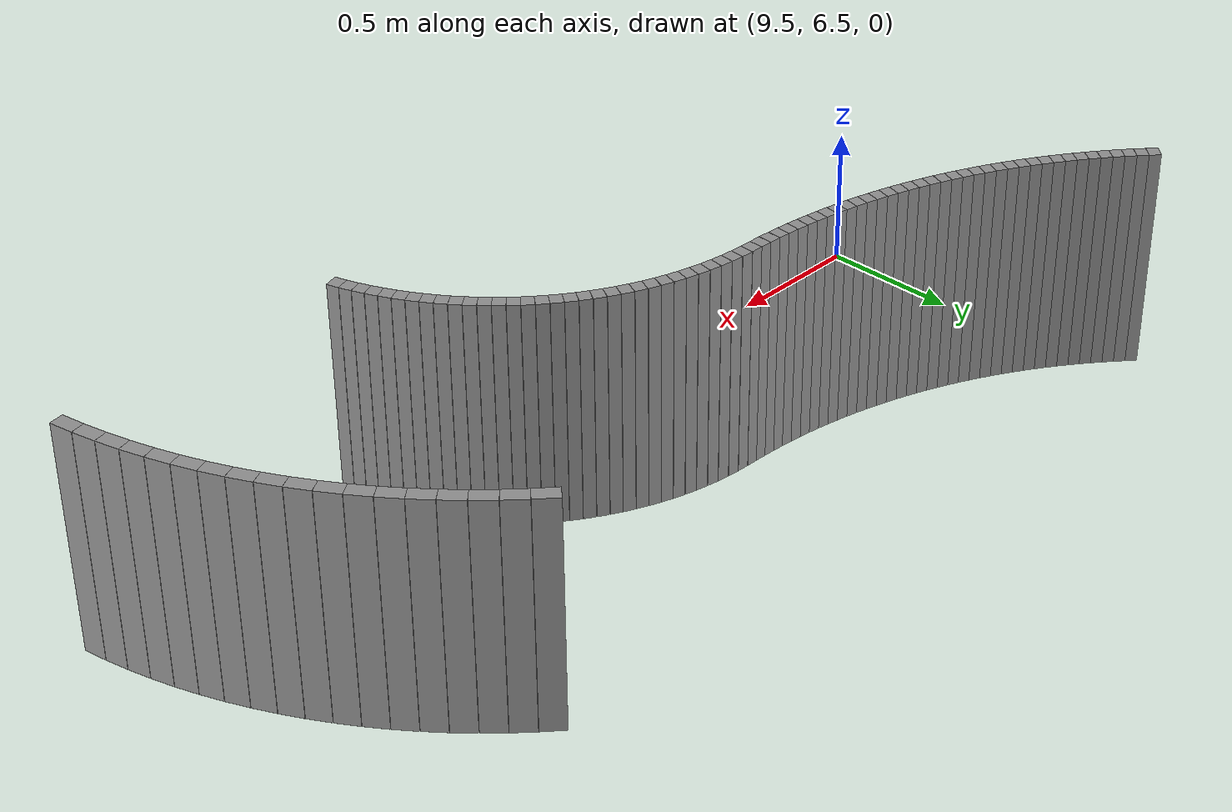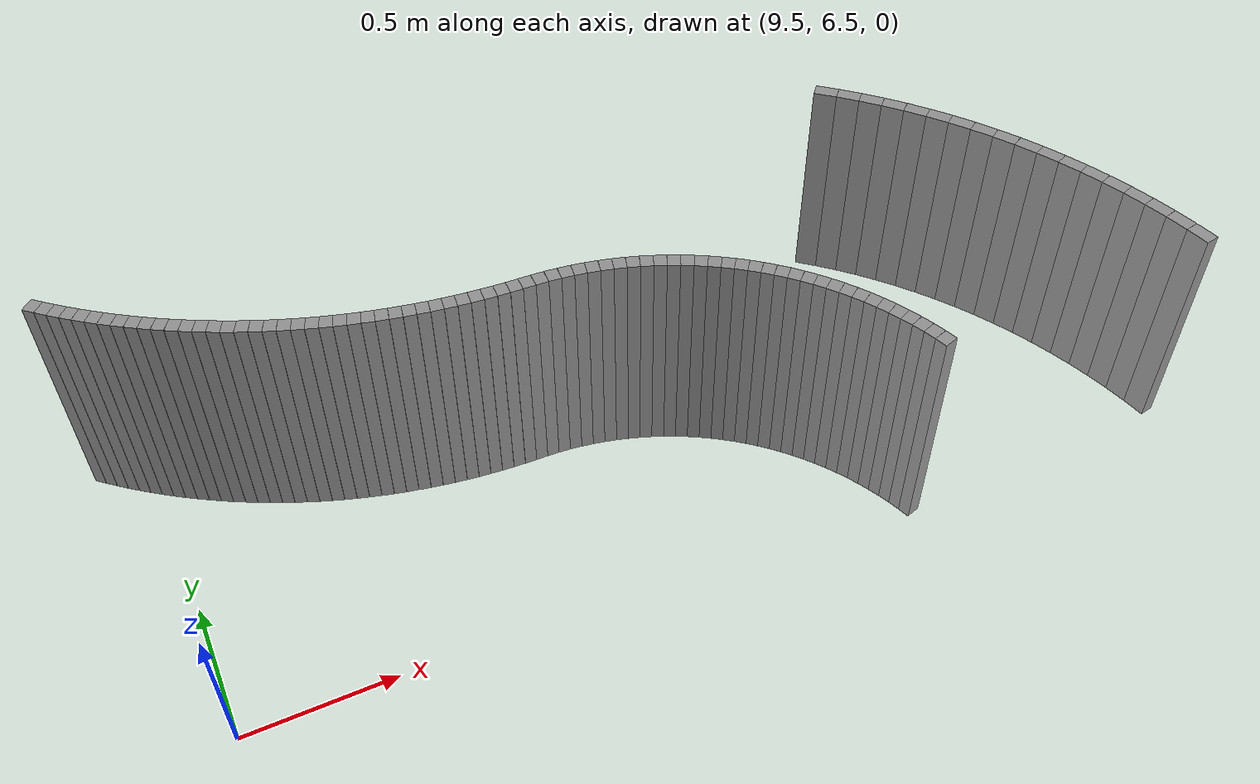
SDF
<sdf version="1.6">
 <model name="path_walls">
  <static>true</static>
  <model name="wall_left_105">
   <static>true</static>
   <pose>11.752347560102859 6.390835836285927 0.40 0 0 1.8690487939078826</pose>
   <link name="wall_link">
    <visual name="wall_visual">
     <geometry><box><size>0.0427374181205523 0.05 0.8</size></box></geometry>
     <material><ambient>0.3 0.3 0.3 1</ambient><diffuse>0.6 0.6 0.6 1</diffuse></material>
    </visual>
    <collision name="wall_collision">
     <geometry><box><size>0.0427374181205523 0.05 0.8</size></box></geometry>
    </collision>
   </link>
  </model>
  <model name="wall_left_106">
   <static>true</static>
   <pose>11.738982083201087 6.431420672394913 0.40 0 0 1.9088157895228475</pose>
   <link name="wall_link">
    <visual name="wall_visual">
     <geometry><box><size>0.042737418120572974 0.05 0.8</size></box></geometry>
     <material><ambient>0.3 0.3 0.3 1</ambient><diffuse>0.6 0.6 0.6 1</diffuse></material>
    </visual>
    <collision name="wall_collision">
     <geometry><box><size>0.042737418120572974 0.05 0.8</size></box></geometry>
    </collision>
   </link>
  </model>
  <model name="wall_left_107">
   <static>true</static>
   <pose>11.724013661432942 6.471442057235722 0.40 0 0 1.948582785138032</pose>
   <link name="wall_link">
    <visual name="wall_visual">
     <geometry><box><size>0.042737418120557064 0.05 0.8</size></box></geometry>
     <material><ambient>0.3 0.3 0.3 1</ambient><diffuse>0.6 0.6 0.6 1</diffuse></material>
    </visual>
    <collision name="wall_collision">
     <geometry><box><size>0.042737418120557064 0.05 0.8</size></box></geometry>
    </collision>
   </link>
  </model>
  <model name="wall_left_108">
   <static>true</static>
   <pose>11.707465962949925 6.510836708772693 0.40 0 0 1.9883497807530512</pose>
   <link name="wall_link">
    <visual name="wall_visual">
     <geometry><box><size>0.04273741812054753 0.05 0.8</size></box></geometry>
     <material><ambient>0.3 0.3 0.3 1</ambient><diffuse>0.6 0.6 0.6 1</diffuse></material>
    </visual>
    <collision name="wall_collision">
     <geometry><box><size>0.04273741812054753 0.05 0.8</size></box></geometry>
    </collision>
   </link>
  </model>
  <model name="wall_left_109">
   <static>true</static>
   <pose>11.689365153064646 6.549542335964376 0.40 0 0 2.0281167763680585</pose>
   <link name="wall_link">
    <visual name="wall_visual">
     <geometry><box><size>0.04273741812056574 0.05 0.8</size></box></geometry>
     <material><ambient>0.3 0.3 0.3 1</ambient><diffuse>0.6 0.6 0.6 1</diffuse></material>
    </visual>
    <collision name="wall_collision">
     <geometry><box><size>0.04273741812056574 0.05 0.8</size></box></geometry>
    </collision>
   </link>
  </model>
  <model name="wall_left_110">
   <static>true</static>
   <pose>11.669739852878067 6.587497737258413 0.40 0 0 2.067883771983156</pose>
   <link name="wall_link">
    <visual name="wall_visual">
     <geometry><box><size>0.04273741812055137 0.05 0.8</size></box></geometry>
     <material><ambient>0.3 0.3 0.3 1</ambient><diffuse>0.6 0.6 0.6 1</diffuse></material>
    </visual>
    <collision name="wall_collision">
     <geometry><box><size>0.04273741812055137 0.05 0.8</size></box></geometry>
    </collision>
   </link>
  </model>
  <model name="wall_left_111">
   <static>true</static>
   <pose>11.648621094023675 6.624642897363794 0.40 0 0 2.107650767598218</pose>
   <link name="wall_link">
    <visual name="wall_visual">
     <geometry><box><size>0.04273741812055587 0.05 0.8</size></box></geometry>
     <material><ambient>0.3 0.3 0.3 1</ambient><diffuse>0.6 0.6 0.6 1</diffuse></material>
    </visual>
    <collision name="wall_collision">
     <geometry><box><size>0.04273741812055587 0.05 0.8</size></box></geometry>
    </collision>
   </link>
  </model>
  <model name="wall_left_112">
   <static>true</static>
   <pose>11.626042269600081 6.660919082147384 0.40 0 0 2.1474177632132623</pose>
   <link name="wall_link">
    <visual name="wall_visual">
     <geometry><box><size>0.042737418120560464 0.05 0.8</size></box></geometry>
     <material><ambient>0.3 0.3 0.3 1</ambient><diffuse>0.6 0.6 0.6 1</diffuse></material>
    </visual>
    <collision name="wall_collision">
     <geometry><box><size>0.042737418120560464 0.05 0.8</size></box></geometry>
    </collision>
   </link>
  </model>
  <model name="wall_left_113">
   <static>true</static>
   <pose>11.602039081369679 6.696268931504626 0.40 0 0 2.187184758828309</pose>
   <link name="wall_link">
    <visual name="wall_visual">
     <geometry><box><size>0.042737418120536455 0.05 0.8</size></box></geometry>
     <material><ambient>0.3 0.3 0.3 1</ambient><diffuse>0.6 0.6 0.6 1</diffuse></material>
    </visual>
    <collision name="wall_collision">
     <geometry><box><size>0.042737418120536455 0.05 0.8</size></box></geometry>
    </collision>
   </link>
  </model>
  <model name="wall_left_114">
   <static>true</static>
   <pose>11.576649483306792 6.730636550057705 0.40 0 0 2.2269517544434194</pose>
   <link name="wall_link">
    <visual name="wall_visual">
     <geometry><box><size>0.04273741812058575 0.05 0.8</size></box></geometry>
     <material><ambient>0.3 0.3 0.3 1</ambient><diffuse>0.6 0.6 0.6 1</diffuse></material>
    </visual>
    <collision name="wall_collision">
     <geometry><box><size>0.04273741812058575 0.05 0.8</size></box></geometry>
    </collision>
   </link>
  </model>
  <model name="wall_left_115">
   <static>true</static>
   <pose>11.549913621584679 6.763967595537574 0.40 0 0 2.2667187500584602</pose>
   <link name="wall_link">
    <visual name="wall_visual">
     <geometry><box><size>0.042737418120538204 0.05 0.8</size></box></geometry>
     <material><ambient>0.3 0.3 0.3 1</ambient><diffuse>0.6 0.6 0.6 1</diffuse></material>
    </visual>
    <collision name="wall_collision">
     <geometry><box><size>0.042737418120538204 0.05 0.8</size></box></geometry>
    </collision>
   </link>
  </model>
  <model name="wall_left_116">
   <static>true</static>
   <pose>11.521873771096168 6.796209364710274 0.40 0 0 2.306485745673511</pose>
   <link name="wall_link">
    <visual name="wall_visual">
     <geometry><box><size>0.042737418120554795 0.05 0.8</size></box></geometry>
     <material><ambient>0.3 0.3 0.3 1</ambient><diffuse>0.6 0.6 0.6 1</diffuse></material>
    </visual>
    <collision name="wall_collision">
     <geometry><box><size>0.042737418120554795 0.05 0.8</size></box></geometry>
    </collision>
   </link>
  </model>
  <model name="wall_left_117">
   <static>true</static>
   <pose>11.492574268608323 6.827310876711616 0.40 0 0 2.3462527412886005</pose>
   <link name="wall_link">
    <visual name="wall_visual">
     <geometry><box><size>0.04273741812056665 0.05 0.8</size></box></geometry>
     <material><ambient>0.3 0.3 0.3 1</ambient><diffuse>0.6 0.6 0.6 1</diffuse></material>
    </visual>
    <collision name="wall_collision">
     <geometry><box><size>0.04273741812056665 0.05 0.8</size></box></geometry>
    </collision>
   </link>
  </model>
  <model name="wall_left_118">
   <static>true</static>
   <pose>11.462061442656967 6.85722295365834 0.40 0 0 2.3860197369036436</pose>
   <link name="wall_link">
    <visual name="wall_visual">
     <geometry><box><size>0.04273741812054185 0.05 0.8</size></box></geometry>
     <material><ambient>0.3 0.3 0.3 1</ambient><diffuse>0.6 0.6 0.6 1</diffuse></material>
    </visual>
    <collision name="wall_collision">
     <geometry><box><size>0.04273741812054185 0.05 0.8</size></box></geometry>
    </collision>
   </link>
  </model>
  <model name="wall_left_119">
   <static>true</static>
   <pose>11.4303835402917 6.885898298408511 0.40 0 0 2.4257867325186773</pose>
   <link name="wall_link">
    <visual name="wall_visual">
     <geometry><box><size>0.042737418120574466 0.05 0.8</size></box></geometry>
     <material><ambient>0.3 0.3 0.3 1</ambient><diffuse>0.6 0.6 0.6 1</diffuse></material>
    </visual>
    <collision name="wall_collision">
     <geometry><box><size>0.042737418120574466 0.05 0.8</size></box></geometry>
    </collision>
   </link>
  </model>
  <model name="wall_left_120">
   <static>true</static>
   <pose>11.397590650787407 6.91329156934799 0.40 0 0 2.465553728133758</pose>
   <link name="wall_link">
    <visual name="wall_visual">
     <geometry><box><size>0.04273741812053488 0.05 0.8</size></box></geometry>
     <material><ambient>0.3 0.3 0.3 1</ambient><diffuse>0.6 0.6 0.6 1</diffuse></material>
    </visual>
    <collision name="wall_collision">
     <geometry><box><size>0.04273741812053488 0.05 0.8</size></box></geometry>
    </collision>
   </link>
  </model>
  <model name="wall_left_121">
   <static>true</static>
   <pose>11.363734626442824 6.939359452084859 0.40 0 0 2.5053207237488357</pose>
   <link name="wall_link">
    <visual name="wall_visual">
     <geometry><box><size>0.042737418120570594 0.05 0.8</size></box></geometry>
     <material><ambient>0.3 0.3 0.3 1</ambient><diffuse>0.6 0.6 0.6 1</diffuse></material>
    </visual>
    <collision name="wall_collision">
     <geometry><box><size>0.042737418120570594 0.05 0.8</size></box></geometry>
    </collision>
   </link>
  </model>
  <model name="wall_left_122">
   <static>true</static>
   <pose>11.328869000591379 6.964060727938385 0.40 0 0 2.545087719363898</pose>
   <link name="wall_link">
    <visual name="wall_visual">
     <geometry><box><size>0.04273741812055266 0.05 0.8</size></box></geometry>
     <material><ambient>0.3 0.3 0.3 1</ambient><diffuse>0.6 0.6 0.6 1</diffuse></material>
    </visual>
    <collision name="wall_collision">
     <geometry><box><size>0.04273741812055266 0.05 0.8</size></box></geometry>
    </collision>
   </link>
  </model>
  <model name="wall_left_123">
   <static>true</static>
   <pose>11.293048902954023 6.9873563391142035 0.40 0 0 2.584854714978948</pose>
   <link name="wall_link">
    <visual name="wall_visual">
     <geometry><box><size>0.04273741812055879 0.05 0.8</size></box></geometry>
     <material><ambient>0.3 0.3 0.3 1</ambient><diffuse>0.6 0.6 0.6 1</diffuse></material>
    </visual>
    <collision name="wall_collision">
     <geometry><box><size>0.04273741812055879 0.05 0.8</size></box></geometry>
    </collision>
   </link>
  </model>
  <model name="wall_left_124">
   <static>true</static>
   <pose>11.25633097246778 7.009209450462739 0.40 0 0 2.62462171059399</pose>
   <link name="wall_link">
    <visual name="wall_visual">
     <geometry><box><size>0.04273741812054539 0.05 0.8</size></box></geometry>
     <material><ambient>0.3 0.3 0.3 1</ambient><diffuse>0.6 0.6 0.6 1</diffuse></material>
    </visual>
    <collision name="wall_collision">
     <geometry><box><size>0.04273741812054539 0.05 0.8</size></box></geometry>
    </collision>
   </link>
  </model>
  <model name="wall_left_125">
   <static>true</static>
   <pose>11.218773267727938 7.02958550772315 0.40 0 0 2.6643887062090683</pose>
   <link name="wall_link">
    <visual name="wall_visual">
     <geometry><box><size>0.04273741812056881 0.05 0.8</size></box></geometry>
     <material><ambient>0.3 0.3 0.3 1</ambient><diffuse>0.6 0.6 0.6 1</diffuse></material>
    </visual>
    <collision name="wall_collision">
     <geometry><box><size>0.04273741812056881 0.05 0.8</size></box></geometry>
    </collision>
   </link>
  </model>
  <model name="wall_left_126">
   <static>true</static>
   <pose>11.18043517518551 7.0484522921606985 0.40 0 0 2.7041557018241016</pose>
   <link name="wall_link">
    <visual name="wall_visual">
     <geometry><box><size>0.04273741812054899 0.05 0.8</size></box></geometry>
     <material><ambient>0.3 0.3 0.3 1</ambient><diffuse>0.6 0.6 0.6 1</diffuse></material>
    </visual>
    <collision name="wall_collision">
     <geometry><box><size>0.04273741812054899 0.05 0.8</size></box></geometry>
    </collision>
   </link>
  </model>
  <model name="wall_left_127">
   <static>true</static>
   <pose>11.141377315245025 7.0657799715112075 0.40 0 0 2.7439226974392095</pose>
   <link name="wall_link">
    <visual name="wall_visual">
     <geometry><box><size>0.042737418120564856 0.05 0.8</size></box></geometry>
     <material><ambient>0.3 0.3 0.3 1</ambient><diffuse>0.6 0.6 0.6 1</diffuse></material>
    </visual>
    <collision name="wall_collision">
     <geometry><box><size>0.042737418120564856 0.05 0.8</size></box></geometry>
    </collision>
   </link>
  </model>
  <model name="wall_left_128">
   <static>true</static>
   <pose>11.101661446411207 7.081541147152002 0.40 0 0 2.7836896930542343</pose>
   <link name="wall_link">
    <visual name="wall_visual">
     <geometry><box><size>0.04273741812055792 0.05 0.8</size></box></geometry>
     <material><ambient>0.3 0.3 0.3 1</ambient><diffuse>0.6 0.6 0.6 1</diffuse></material>
    </visual>
    <collision name="wall_collision">
     <geometry><box><size>0.04273741812055792 0.05 0.8</size></box></geometry>
    </collision>
   </link>
  </model>
  <model name="wall_left_129">
   <static>true</static>
   <pose>11.061350367636113 7.095710897424752 0.40 0 0 2.823456688669292</pose>
   <link name="wall_link">
    <visual name="wall_visual">
     <geometry><box><size>0.04273741812054215 0.05 0.8</size></box></geometry>
     <material><ambient>0.3 0.3 0.3 1</ambient><diffuse>0.6 0.6 0.6 1</diffuse></material>
    </visual>
    <collision name="wall_collision">
     <geometry><box><size>0.04273741812054215 0.05 0.8</size></box></geometry>
    </collision>
   </link>
  </model>
  <model name="wall_left_130">
   <static>true</static>
   <pose>11.020507819021027 7.10826681704175 0.40 0 0 2.863223684284406</pose>
   <link name="wall_link">
    <visual name="wall_visual">
     <geometry><box><size>0.042737418120561976 0.05 0.8</size></box></geometry>
     <material><ambient>0.3 0.3 0.3 1</ambient><diffuse>0.6 0.6 0.6 1</diffuse></material>
    </visual>
    <collision name="wall_collision">
     <geometry><box><size>0.042737418120561976 0.05 0.8</size></box></geometry>
    </collision>
   </link>
  </model>
  <model name="wall_left_131">
   <static>true</static>
   <pose>10.979198381030304 7.119189052513278 0.40 0 0 2.902990679899397</pose>
   <link name="wall_link">
    <visual name="wall_visual">
     <geometry><box><size>0.04273741812055983 0.05 0.8</size></box></geometry>
     <material><ambient>0.3 0.3 0.3 1</ambient><diffuse>0.6 0.6 0.6 1</diffuse></material>
    </visual>
    <collision name="wall_collision">
     <geometry><box><size>0.04273741812055983 0.05 0.8</size></box></geometry>
    </collision>
   </link>
  </model>
  <model name="wall_left_132">
   <static>true</static>
   <pose>10.937487372376378 7.1284603335400325 0.40 0 0 2.9427576755145104</pose>
   <link name="wall_link">
    <visual name="wall_visual">
     <geometry><box><size>0.04273741812056095 0.05 0.8</size></box></geometry>
     <material><ambient>0.3 0.3 0.3 1</ambient><diffuse>0.6 0.6 0.6 1</diffuse></material>
    </visual>
    <collision name="wall_collision">
     <geometry><box><size>0.04273741812056095 0.05 0.8</size></box></geometry>
    </collision>
   </link>
  </model>
  <model name="wall_left_133">
   <static>true</static>
   <pose>10.895440746737451 7.136066000321041 0.40 0 0 2.982524671129539</pose>
   <link name="wall_link">
    <visual name="wall_visual">
     <geometry><box><size>0.04273741812053569 0.05 0.8</size></box></geometry>
     <material><ambient>0.3 0.3 0.3 1</ambient><diffuse>0.6 0.6 0.6 1</diffuse></material>
    </visual>
    <collision name="wall_collision">
     <geometry><box><size>0.04273741812053569 0.05 0.8</size></box></geometry>
    </collision>
   </link>
  </model>
  <model name="wall_left_134">
   <static>true</static>
   <pose>10.85312498847113 7.1419940267338164 0.40 0 0 3.02229166674463</pose>
   <link name="wall_link">
    <visual name="wall_visual">
     <geometry><box><size>0.04273741812057131 0.05 0.8</size></box></geometry>
     <material><ambient>0.3 0.3 0.3 1</ambient><diffuse>0.6 0.6 0.6 1</diffuse></material>
    </visual>
    <collision name="wall_collision">
     <geometry><box><size>0.04273741812057131 0.05 0.8</size></box></geometry>
    </collision>
   </link>
  </model>
  <model name="wall_left_135">
   <static>true</static>
   <pose>10.81060700748904 7.14623503935012 0.40 0 0 3.062058662359686</pose>
   <link name="wall_link">
    <visual name="wall_visual">
     <geometry><box><size>0.04273741812055179 0.05 0.8</size></box></geometry>
     <material><ambient>0.3 0.3 0.3 1</ambient><diffuse>0.6 0.6 0.6 1</diffuse></material>
    </visual>
    <collision name="wall_collision">
     <geometry><box><size>0.04273741812055179 0.05 0.8</size></box></geometry>
    </collision>
   </link>
  </model>
  <model name="wall_left_136">
   <static>true</static>
   <pose>10.767954033458501 7.148782332257287 0.40 0 0 3.1018256579747163</pose>
   <link name="wall_link">
    <visual name="wall_visual">
     <geometry><box><size>0.04273741812056787 0.05 0.8</size></box></geometry>
     <material><ambient>0.3 0.3 0.3 1</ambient><diffuse>0.6 0.6 0.6 1</diffuse></material>
    </visual>
    <collision name="wall_collision">
     <geometry><box><size>0.04273741812056787 0.05 0.8</size></box></geometry>
    </collision>
   </link>
  </model>
  <model name="wall_left_137">
   <static>true</static>
   <pose>10.725603469462243 7.149983966524523 0.40 0 0 3.124827089518525</pose>
   <link name="wall_link">
    <visual name="wall_visual">
     <geometry><box><size>0.042003401299873906 0.05 0.8</size></box></geometry>
     <material><ambient>0.3 0.3 0.3 1</ambient><diffuse>0.6 0.6 0.6 1</diffuse></material>
    </visual>
    <collision name="wall_collision">
     <geometry><box><size>0.042003401299873906 0.05 0.8</size></box></geometry>
    </collision>
   </link>
  </model>
  <model name="wall_left_138">
   <static>true</static>
   <pose>10.68398000893017 7.150746200844246 0.40 0 0 3.1217091557822765</pose>
   <link name="wall_link">
    <visual name="wall_visual">
     <geometry><box><size>0.0412575782659176 0.05 0.8</size></box></geometry>
     <material><ambient>0.3 0.3 0.3 1</ambient><diffuse>0.6 0.6 0.6 1</diffuse></material>
    </visual>
    <collision name="wall_collision">
     <geometry><box><size>0.0412575782659176 0.05 0.8</size></box></geometry>
    </collision>
   </link>
  </model>
  <model name="wall_left_139">
   <static>true</static>
   <pose>10.642742817539638 7.151976475067686 0.40 0 0 3.101825657974741</pose>
   <link name="wall_link">
    <visual name="wall_visual">
     <geometry><box><size>0.041257578265898015 0.05 0.8</size></box></geometry>
     <material><ambient>0.3 0.3 0.3 1</ambient><diffuse>0.6 0.6 0.6 1</diffuse></material>
    </visual>
    <collision name="wall_collision">
     <geometry><box><size>0.041257578265898015 0.05 0.8</size></box></geometry>
    </collision>
   </link>
  </model>
  <model name="wall_left_140">
   <static>true</static>
   <pose>10.601538238057191 7.154026391680545 0.40 0 0 3.0819421601671824</pose>
   <link name="wall_link">
    <visual name="wall_visual">
     <geometry><box><size>0.04125757826593714 0.05 0.8</size></box></geometry>
     <material><ambient>0.3 0.3 0.3 1</ambient><diffuse>0.6 0.6 0.6 1</diffuse></material>
    </visual>
    <collision name="wall_collision">
     <geometry><box><size>0.04125757826593714 0.05 0.8</size></box></geometry>
    </collision>
   </link>
  </model>
  <model name="wall_left_141">
   <static>true</static>
   <pose>10.560382560320257 7.156895140267845 0.40 0 0 3.0620586623596746</pose>
   <link name="wall_link">
    <visual name="wall_visual">
     <geometry><box><size>0.04125757826586866 0.05 0.8</size></box></geometry>
     <material><ambient>0.3 0.3 0.3 1</ambient><diffuse>0.6 0.6 0.6 1</diffuse></material>
    </visual>
    <collision name="wall_collision">
     <geometry><box><size>0.04125757826586866 0.05 0.8</size></box></geometry>
    </collision>
   </link>
  </model>
  <model name="wall_left_142">
   <static>true</static>
   <pose>10.519292054833375 7.160581586697202 0.40 0 0 3.042175164552134</pose>
   <link name="wall_link">
    <visual name="wall_visual">
     <geometry><box><size>0.041257578265940786 0.05 0.8</size></box></geometry>
     <material><ambient>0.3 0.3 0.3 1</ambient><diffuse>0.6 0.6 0.6 1</diffuse></material>
    </visual>
    <collision name="wall_collision">
     <geometry><box><size>0.041257578265940786 0.05 0.8</size></box></geometry>
    </collision>
   </link>
  </model>
  <model name="wall_left_143">
   <static>true</static>
   <pose>10.47828296633589 7.165084273567187 0.40 0 0 3.022291666744607</pose>
   <link name="wall_link">
    <visual name="wall_visual">
     <geometry><box><size>0.04125757826586574 0.05 0.8</size></box></geometry>
     <material><ambient>0.3 0.3 0.3 1</ambient><diffuse>0.6 0.6 0.6 1</diffuse></material>
    </visual>
    <collision name="wall_collision">
     <geometry><box><size>0.04125757826586574 0.05 0.8</size></box></geometry>
    </collision>
   </link>
  </model>
  <model name="wall_left_144">
   <static>true</static>
   <pose>10.437371507379705 7.170401420783504 0.40 0 0 3.0024081689370883</pose>
   <link name="wall_link">
    <visual name="wall_visual">
     <geometry><box><size>0.04125757826593804 0.05 0.8</size></box></geometry>
     <material><ambient>0.3 0.3 0.3 1</ambient><diffuse>0.6 0.6 0.6 1</diffuse></material>
    </visual>
    <collision name="wall_collision">
     <geometry><box><size>0.04125757826593804 0.05 0.8</size></box></geometry>
    </collision>
   </link>
  </model>
  <model name="wall_left_145">
   <static>true</static>
   <pose>10.396573851919808 7.1765309262627275 0.40 0 0 2.9825246711295432</pose>
   <link name="wall_link">
    <visual name="wall_visual">
     <geometry><box><size>0.04125757826587912 0.05 0.8</size></box></geometry>
     <material><ambient>0.3 0.3 0.3 1</ambient><diffuse>0.6 0.6 0.6 1</diffuse></material>
    </visual>
    <collision name="wall_collision">
     <geometry><box><size>0.04125757826587912 0.05 0.8</size></box></geometry>
    </collision>
   </link>
  </model>
  <model name="wall_left_146">
   <static>true</static>
   <pose>10.355906128920093 7.1834703667633395 0.40 0 0 2.9626411733220754</pose>
   <link name="wall_link">
    <visual name="wall_visual">
     <geometry><box><size>0.041257578265909825 0.05 0.8</size></box></geometry>
     <material><ambient>0.3 0.3 0.3 1</ambient><diffuse>0.6 0.6 0.6 1</diffuse></material>
    </visual>
    <collision name="wall_collision">
     <geometry><box><size>0.041257578265909825 0.05 0.8</size></box></geometry>
    </collision>
   </link>
  </model>
  <model name="wall_left_147">
   <static>true</static>
   <pose>10.315384415976837 7.191216998843748 0.40 0 0 2.942757675514465</pose>
   <link name="wall_link">
    <visual name="wall_visual">
     <geometry><box><size>0.04125757826592799 0.05 0.8</size></box></geometry>
     <material><ambient>0.3 0.3 0.3 1</ambient><diffuse>0.6 0.6 0.6 1</diffuse></material>
    </visual>
    <collision name="wall_collision">
     <geometry><box><size>0.04125757826592799 0.05 0.8</size></box></geometry>
    </collision>
   </link>
  </model>
  <model name="wall_left_148">
   <static>true</static>
   <pose>10.275024732962697 7.199767759946859 0.40 0 0 2.9228741777069582</pose>
   <link name="wall_link">
    <visual name="wall_visual">
     <geometry><box><size>0.04125757826589092 0.05 0.8</size></box></geometry>
     <material><ambient>0.3 0.3 0.3 1</ambient><diffuse>0.6 0.6 0.6 1</diffuse></material>
    </visual>
    <collision name="wall_collision">
     <geometry><box><size>0.04125757826589092 0.05 0.8</size></box></geometry>
    </collision>
   </link>
  </model>
  <model name="wall_left_149">
   <static>true</static>
   <pose>10.23484303569332 7.209119269610843 0.40 0 0 2.9029906798994167</pose>
   <link name="wall_link">
    <visual name="wall_visual">
     <geometry><box><size>0.041257578265910505 0.05 0.8</size></box></geometry>
     <material><ambient>0.3 0.3 0.3 1</ambient><diffuse>0.6 0.6 0.6 1</diffuse></material>
    </visual>
    <collision name="wall_collision">
     <geometry><box><size>0.041257578265910505 0.05 0.8</size></box></geometry>
    </collision>
   </link>
  </model>
  <model name="wall_left_150">
   <static>true</static>
   <pose>10.194855209619359 7.2192678308055775 0.40 0 0 2.8831071820918965</pose>
   <link name="wall_link">
    <visual name="wall_visual">
     <geometry><box><size>0.041257578265913794 0.05 0.8</size></box></geometry>
     <material><ambient>0.3 0.3 0.3 1</ambient><diffuse>0.6 0.6 0.6 1</diffuse></material>
    </visual>
    <collision name="wall_collision">
     <geometry><box><size>0.041257578265913794 0.05 0.8</size></box></geometry>
    </collision>
   </link>
  </model>
  <model name="wall_left_151">
   <static>true</static>
   <pose>10.155077063546395 7.230209431394201 0.40 0 0 2.863223684284378</pose>
   <link name="wall_link">
    <visual name="wall_visual">
     <geometry><box><size>0.041257578265876504 0.05 0.8</size></box></geometry>
     <material><ambient>0.3 0.3 0.3 1</ambient><diffuse>0.6 0.6 0.6 1</diffuse></material>
    </visual>
    <collision name="wall_collision">
     <geometry><box><size>0.041257578265876504 0.05 0.8</size></box></geometry>
    </collision>
   </link>
  </model>
  <model name="wall_left_152">
   <static>true</static>
   <pose>10.115524323384957 7.241939745719318 0.40 0 0 2.843340186476827</pose>
   <link name="wall_link">
    <visual name="wall_visual">
     <geometry><box><size>0.04125757826594484 0.05 0.8</size></box></geometry>
     <material><ambient>0.3 0.3 0.3 1</ambient><diffuse>0.6 0.6 0.6 1</diffuse></material>
    </visual>
    <collision name="wall_collision">
     <geometry><box><size>0.04125757826594484 0.05 0.8</size></box></geometry>
    </collision>
   </link>
  </model>
  <model name="wall_left_153">
   <static>true</static>
   <pose>10.076212625933533 7.254454136313063 0.40 0 0 2.823456688669294</pose>
   <link name="wall_link">
    <visual name="wall_visual">
     <geometry><box><size>0.04125757826589255 0.05 0.8</size></box></geometry>
     <material><ambient>0.3 0.3 0.3 1</ambient><diffuse>0.6 0.6 0.6 1</diffuse></material>
    </visual>
    <collision name="wall_collision">
     <geometry><box><size>0.04125757826589255 0.05 0.8</size></box></geometry>
    </collision>
   </link>
  </model>
  <model name="wall_left_154">
   <static>true</static>
   <pose>10.037157512696709 7.2677476557304965 0.40 0 0 2.8035731908617727</pose>
   <link name="wall_link">
    <visual name="wall_visual">
     <geometry><box><size>0.041257578265890944 0.05 0.8</size></box></geometry>
     <material><ambient>0.3 0.3 0.3 1</ambient><diffuse>0.6 0.6 0.6 1</diffuse></material>
    </visual>
    <collision name="wall_collision">
     <geometry><box><size>0.041257578265890944 0.05 0.8</size></box></geometry>
    </collision>
   </link>
  </model>
  <model name="wall_left_155">
   <static>true</static>
   <pose>9.998374423740877 7.281815048505548 0.40 0 0 2.7836896930542596</pose>
   <link name="wall_link">
    <visual name="wall_visual">
     <geometry><box><size>0.041257578265913336 0.05 0.8</size></box></geometry>
     <material><ambient>0.3 0.3 0.3 1</ambient><diffuse>0.6 0.6 0.6 1</diffuse></material>
    </visual>
    <collision name="wall_collision">
     <geometry><box><size>0.041257578265913336 0.05 0.8</size></box></geometry>
    </collision>
   </link>
  </model>
  <model name="wall_left_156">
   <static>true</static>
   <pose>9.959878691590259 7.296650753228689 0.40 0 0 2.763806195246706</pose>
   <link name="wall_link">
    <visual name="wall_visual">
     <geometry><box><size>0.041257578265907126 0.05 0.8</size></box></geometry>
     <material><ambient>0.3 0.3 0.3 1</ambient><diffuse>0.6 0.6 0.6 1</diffuse></material>
    </visual>
    <collision name="wall_collision">
     <geometry><box><size>0.041257578265907126 0.05 0.8</size></box></geometry>
    </collision>
   </link>
  </model>
  <model name="wall_left_157">
   <static>true</static>
   <pose>9.921685535165318 7.312248904745587 0.40 0 0 2.7439226974392206</pose>
   <link name="wall_link">
    <visual name="wall_visual">
     <geometry><box><size>0.04125757826590732 0.05 0.8</size></box></geometry>
     <material><ambient>0.3 0.3 0.3 1</ambient><diffuse>0.6 0.6 0.6 1</diffuse></material>
    </visual>
    <collision name="wall_collision">
     <geometry><box><size>0.04125757826590732 0.05 0.8</size></box></geometry>
    </collision>
   </link>
  </model>
  <model name="wall_left_158">
   <static>true</static>
   <pose>9.88381005376608 7.328603336475849 0.40 0 0 2.7240391996316706</pose>
   <link name="wall_link">
    <visual name="wall_visual">
     <geometry><box><size>0.041257578265899736 0.05 0.8</size></box></geometry>
     <material><ambient>0.3 0.3 0.3 1</ambient><diffuse>0.6 0.6 0.6 1</diffuse></material>
    </visual>
    <collision name="wall_collision">
     <geometry><box><size>0.041257578265899736 0.05 0.8</size></box></geometry>
    </collision>
   </link>
  </model>
  <model name="wall_left_159">
   <static>true</static>
   <pose>9.846267221102774 7.345707582850917 0.40 0 0 2.7041557018241025</pose>
   <link name="wall_link">
    <visual name="wall_visual">
     <geometry><box><size>0.0412575782659145 0.05 0.8</size></box></geometry>
     <material><ambient>0.3 0.3 0.3 1</ambient><diffuse>0.6 0.6 0.6 1</diffuse></material>
    </visual>
    <collision name="wall_collision">
     <geometry><box><size>0.0412575782659145 0.05 0.8</size></box></geometry>
    </collision>
   </link>
  </model>
  <model name="wall_left_160">
   <static>true</static>
   <pose>9.809071879376127 7.363554881870163 0.40 0 0 2.6842722040166196</pose>
   <link name="wall_link">
    <visual name="wall_visual">
     <geometry><box><size>0.0412575782659078 0.05 0.8</size></box></geometry>
     <material><ambient>0.3 0.3 0.3 1</ambient><diffuse>0.6 0.6 0.6 1</diffuse></material>
    </visual>
    <collision name="wall_collision">
     <geometry><box><size>0.0412575782659078 0.05 0.8</size></box></geometry>
    </collision>
   </link>
  </model>
  <model name="wall_left_161">
   <static>true</static>
   <pose>9.772238733409653 7.382138177774182 0.40 0 0 2.664388706209011</pose>
   <link name="wall_link">
    <visual name="wall_visual">
     <geometry><box><size>0.04125757826590461 0.05 0.8</size></box></geometry>
     <material><ambient>0.3 0.3 0.3 1</ambient><diffuse>0.6 0.6 0.6 1</diffuse></material>
    </visual>
    <collision name="wall_collision">
     <geometry><box><size>0.04125757826590461 0.05 0.8</size></box></geometry>
    </collision>
   </link>
  </model>
  <model name="wall_left_162">
   <static>true</static>
   <pose>9.73578234483621 7.401450123834227 0.40 0 0 2.644505208401556</pose>
   <link name="wall_link">
    <visual name="wall_visual">
     <geometry><box><size>0.041257578265904996 0.05 0.8</size></box></geometry>
     <material><ambient>0.3 0.3 0.3 1</ambient><diffuse>0.6 0.6 0.6 1</diffuse></material>
    </visual>
    <collision name="wall_collision">
     <geometry><box><size>0.041257578265904996 0.05 0.8</size></box></geometry>
    </collision>
   </link>
  </model>
  <model name="wall_left_163">
   <static>true</static>
   <pose>9.699717126341223 7.42148308525666 0.40 0 0 2.6246217105939853</pose>
   <link name="wall_link">
    <visual name="wall_visual">
     <geometry><box><size>0.041257578265902956 0.05 0.8</size></box></geometry>
     <material><ambient>0.3 0.3 0.3 1</ambient><diffuse>0.6 0.6 0.6 1</diffuse></material>
    </visual>
    <collision name="wall_collision">
     <geometry><box><size>0.041257578265902956 0.05 0.8</size></box></geometry>
    </collision>
   </link>
  </model>
  <model name="wall_left_164">
   <static>true</static>
   <pose>9.664057335964763 7.442229142201299 0.40 0 0 2.6047382127864864</pose>
   <link name="wall_link">
    <visual name="wall_visual">
     <geometry><box><size>0.04125757826589606 0.05 0.8</size></box></geometry>
     <material><ambient>0.3 0.3 0.3 1</ambient><diffuse>0.6 0.6 0.6 1</diffuse></material>
    </visual>
    <collision name="wall_collision">
     <geometry><box><size>0.04125757826589606 0.05 0.8</size></box></geometry>
    </collision>
   </link>
  </model>
  <model name="wall_left_165">
   <static>true</static>
   <pose>9.628817071464741 7.4636800929124565 0.40 0 0 2.584854714978987</pose>
   <link name="wall_link">
    <visual name="wall_visual">
     <geometry><box><size>0.04125757826591484 0.05 0.8</size></box></geometry>
     <material><ambient>0.3 0.3 0.3 1</ambient><diffuse>0.6 0.6 0.6 1</diffuse></material>
    </visual>
    <collision name="wall_collision">
     <geometry><box><size>0.04125757826591484 0.05 0.8</size></box></geometry>
    </collision>
   </link>
  </model>
  <model name="wall_left_166">
   <static>true</static>
   <pose>9.594010264743535 7.485827456961415 0.40 0 0 2.5649712171713457</pose>
   <link name="wall_link">
    <visual name="wall_visual">
     <geometry><box><size>0.041257578265910116 0.05 0.8</size></box></geometry>
     <material><ambient>0.3 0.3 0.3 1</ambient><diffuse>0.6 0.6 0.6 1</diffuse></material>
    </visual>
    <collision name="wall_collision">
     <geometry><box><size>0.041257578265910116 0.05 0.8</size></box></geometry>
    </collision>
   </link>
  </model>
  <model name="wall_left_167">
   <static>true</static>
   <pose>9.559650676340134 7.508662478599079 0.40 0 0 2.545087719363879</pose>
   <link name="wall_link">
    <visual name="wall_visual">
     <geometry><box><size>0.041257578265896204 0.05 0.8</size></box></geometry>
     <material><ambient>0.3 0.3 0.3 1</ambient><diffuse>0.6 0.6 0.6 1</diffuse></material>
    </visual>
    <collision name="wall_collision">
     <geometry><box><size>0.041257578265896204 0.05 0.8</size></box></geometry>
    </collision>
   </link>
  </model>
  <model name="wall_left_168">
   <static>true</static>
   <pose>9.525751889990003 7.532176130217496 0.40 0 0 2.525204221556403</pose>
   <link name="wall_link">
    <visual name="wall_visual">
     <geometry><box><size>0.04125757826591882 0.05 0.8</size></box></geometry>
     <material><ambient>0.3 0.3 0.3 1</ambient><diffuse>0.6 0.6 0.6 1</diffuse></material>
    </visual>
    <collision name="wall_collision">
     <geometry><box><size>0.04125757826591882 0.05 0.8</size></box></geometry>
    </collision>
   </link>
  </model>
  <model name="wall_left_169">
   <static>true</static>
   <pose>9.492327307254936 7.556359115918822 0.40 0 0 2.5053207237488277</pose>
   <link name="wall_link">
    <visual name="wall_visual">
     <geometry><box><size>0.041257578265892034 0.05 0.8</size></box></geometry>
     <material><ambient>0.3 0.3 0.3 1</ambient><diffuse>0.6 0.6 0.6 1</diffuse></material>
    </visual>
    <collision name="wall_collision">
     <geometry><box><size>0.041257578265892034 0.05 0.8</size></box></geometry>
    </collision>
   </link>
  </model>
  <model name="wall_left_170">
   <static>true</static>
   <pose>9.459390142224834 7.581201875190373 0.40 0 0 2.485437225941222</pose>
   <link name="wall_link">
    <visual name="wall_visual">
     <geometry><box><size>0.041257578265928276 0.05 0.8</size></box></geometry>
     <material><ambient>0.3 0.3 0.3 1</ambient><diffuse>0.6 0.6 0.6 1</diffuse></material>
    </visual>
    <collision name="wall_collision">
     <geometry><box><size>0.041257578265928276 0.05 0.8</size></box></geometry>
    </collision>
   </link>
  </model>
  <model name="wall_left_171">
   <static>true</static>
   <pose>9.42695341629367 7.60669458668427 0.40 0 0 2.465553728133847</pose>
   <link name="wall_link">
    <visual name="wall_visual">
     <geometry><box><size>0.04125757826589557 0.05 0.8</size></box></geometry>
     <material><ambient>0.3 0.3 0.3 1</ambient><diffuse>0.6 0.6 0.6 1</diffuse></material>
    </visual>
    <collision name="wall_collision">
     <geometry><box><size>0.04125757826589557 0.05 0.8</size></box></geometry>
    </collision>
   </link>
  </model>
  <model name="wall_left_172">
   <static>true</static>
   <pose>9.395029953011614 7.632827172100213 0.40 0 0 2.4456702303261837</pose>
   <link name="wall_link">
    <visual name="wall_visual">
     <geometry><box><size>0.04125757826587968 0.05 0.8</size></box></geometry>
     <material><ambient>0.3 0.3 0.3 1</ambient><diffuse>0.6 0.6 0.6 1</diffuse></material>
    </visual>
    <collision name="wall_collision">
     <geometry><box><size>0.04125757826587968 0.05 0.8</size></box></geometry>
    </collision>
   </link>
  </model>
  <model name="wall_left_173">
   <static>true</static>
   <pose>9.363632373015275 7.659589300169901 0.40 0 0 2.425786732518717</pose>
   <link name="wall_link">
    <visual name="wall_visual">
     <geometry><box><size>0.04125757826595318 0.05 0.8</size></box></geometry>
     <material><ambient>0.3 0.3 0.3 1</ambient><diffuse>0.6 0.6 0.6 1</diffuse></material>
    </visual>
    <collision name="wall_collision">
     <geometry><box><size>0.04125757826595318 0.05 0.8</size></box></geometry>
    </collision>
   </link>
  </model>
  <model name="wall_left_174">
   <static>true</static>
   <pose>9.332773089038401 7.686970390741287 0.40 0 0 2.4059032347111264</pose>
   <link name="wall_link">
    <visual name="wall_visual">
     <geometry><box><size>0.04125757826585586 0.05 0.8</size></box></geometry>
     <material><ambient>0.3 0.3 0.3 1</ambient><diffuse>0.6 0.6 0.6 1</diffuse></material>
    </visual>
    <collision name="wall_collision">
     <geometry><box><size>0.04125757826585586 0.05 0.8</size></box></geometry>
    </collision>
   </link>
  </model>
  <model name="wall_right_102">
   <static>true</static>
   <pose>12.76646420968354 6.44430890541078 0.40 0 0 1.7497478070626797</pose>
   <link name="wall_link">
    <visual name="wall_visual">
     <geometry><box><size>0.08250179345067846 0.05 0.8</size></box></geometry>
     <material><ambient>0.3 0.3 0.3 1</ambient><diffuse>0.6 0.6 0.6 1</diffuse></material>
    </visual>
    <collision name="wall_collision">
     <geometry><box><size>0.08250179345067846 0.05 0.8</size></box></geometry>
    </collision>
   </link>
  </model>
  <model name="wall_right_103">
   <static>true</static>
   <pose>12.750171066466837 6.525169209452134 0.40 0 0 1.7895148026777052</pose>
   <link name="wall_link">
    <visual name="wall_visual">
     <geometry><box><size>0.08250179345069444 0.05 0.8</size></box></geometry>
     <material><ambient>0.3 0.3 0.3 1</ambient><diffuse>0.6 0.6 0.6 1</diffuse></material>
    </visual>
    <collision name="wall_collision">
     <geometry><box><size>0.08250179345069444 0.05 0.8</size></box></geometry>
    </collision>
   </link>
  </model>
  <model name="wall_right_104">
   <static>true</static>
   <pose>12.73067608075597 6.6053178265186565 0.40 0 0 1.829281798292806</pose>
   <link name="wall_link">
    <visual name="wall_visual">
     <geometry><box><size>0.08250179345071162 0.05 0.8</size></box></geometry>
     <material><ambient>0.3 0.3 0.3 1</ambient><diffuse>0.6 0.6 0.6 1</diffuse></material>
    </visual>
    <collision name="wall_collision">
     <geometry><box><size>0.08250179345071162 0.05 0.8</size></box></geometry>
    </collision>
   </link>
  </model>
  <model name="wall_right_105">
   <static>true</static>
   <pose>12.708010078130453 6.684628025172573 0.40 0 0 1.8690487939078646</pose>
   <link name="wall_link">
    <visual name="wall_visual">
     <geometry><box><size>0.08250179345070122 0.05 0.8</size></box></geometry>
     <material><ambient>0.3 0.3 0.3 1</ambient><diffuse>0.6 0.6 0.6 1</diffuse></material>
    </visual>
    <collision name="wall_collision">
     <geometry><box><size>0.08250179345070122 0.05 0.8</size></box></geometry>
    </collision>
   </link>
  </model>
  <model name="wall_right_106">
   <static>true</static>
   <pose>12.682208898199342 6.762974399687947 0.40 0 0 1.908815789522917</pose>
   <link name="wall_link">
    <visual name="wall_visual">
     <geometry><box><size>0.08250179345067864 0.05 0.8</size></box></geometry>
     <material><ambient>0.3 0.3 0.3 1</ambient><diffuse>0.6 0.6 0.6 1</diffuse></material>
    </visual>
    <collision name="wall_collision">
     <geometry><box><size>0.08250179345067864 0.05 0.8</size></box></geometry>
    </collision>
   </link>
  </model>
  <model name="wall_right_107">
   <static>true</static>
   <pose>12.653313337931412 6.840233068342945 0.40 0 0 1.9485827851379867</pose>
   <link name="wall_link">
    <visual name="wall_visual">
     <geometry><box><size>0.08250179345069696 0.05 0.8</size></box></geometry>
     <material><ambient>0.3 0.3 0.3 1</ambient><diffuse>0.6 0.6 0.6 1</diffuse></material>
    </visual>
    <collision name="wall_collision">
     <geometry><box><size>0.08250179345069696 0.05 0.8</size></box></geometry>
    </collision>
   </link>
  </model>
  <model name="wall_right_108">
   <static>true</static>
   <pose>12.621369087146793 6.916281869302278 0.40 0 0 1.9883497807530237</pose>
   <link name="wall_link">
    <visual name="wall_visual">
     <geometry><box><size>0.0825017934507053 0.05 0.8</size></box></geometry>
     <material><ambient>0.3 0.3 0.3 1</ambient><diffuse>0.6 0.6 0.6 1</diffuse></material>
    </visual>
    <collision name="wall_collision">
     <geometry><box><size>0.0825017934507053 0.05 0.8</size></box></geometry>
    </collision>
   </link>
  </model>
  <model name="wall_right_109">
   <static>true</static>
   <pose>12.586426656271975 6.991000553780127 0.40 0 0 2.028116776368096</pose>
   <link name="wall_link">
    <visual name="wall_visual">
     <geometry><box><size>0.0825017934506862 0.05 0.8</size></box></geometry>
     <material><ambient>0.3 0.3 0.3 1</ambient><diffuse>0.6 0.6 0.6 1</diffuse></material>
    </visual>
    <collision name="wall_collision">
     <geometry><box><size>0.0825017934506862 0.05 0.8</size></box></geometry>
    </collision>
   </link>
  </model>
  <model name="wall_right_110">
   <static>true</static>
   <pose>12.548541296472427 7.064270976178257 0.40 0 0 2.067883771983134</pose>
   <link name="wall_link">
    <visual name="wall_visual">
     <geometry><box><size>0.08250179345070262 0.05 0.8</size></box></geometry>
     <material><ambient>0.3 0.3 0.3 1</ambient><diffuse>0.6 0.6 0.6 1</diffuse></material>
    </visual>
    <collision name="wall_collision">
     <geometry><box><size>0.08250179345070262 0.05 0.8</size></box></geometry>
    </collision>
   </link>
  </model>
  <model name="wall_right_111">
   <static>true</static>
   <pose>12.507772912289148 7.135977280898464 0.40 0 0 2.1076507675982366</pose>
   <link name="wall_link">
    <visual name="wall_visual">
     <geometry><box><size>0.08250179345069704 0.05 0.8</size></box></geometry>
     <material><ambient>0.3 0.3 0.3 1</ambient><diffuse>0.6 0.6 0.6 1</diffuse></material>
    </visual>
    <collision name="wall_collision">
     <geometry><box><size>0.08250179345069704 0.05 0.8</size></box></geometry>
    </collision>
   </link>
  </model>
  <model name="wall_right_112">
   <static>true</static>
   <pose>12.464185966917295 7.206006085534074 0.40 0 0 2.1474177632132374</pose>
   <link name="wall_link">
    <visual name="wall_visual">
     <geometry><box><size>0.08250179345069013 0.05 0.8</size></box></geometry>
     <material><ambient>0.3 0.3 0.3 1</ambient><diffuse>0.6 0.6 0.6 1</diffuse></material>
    </visual>
    <collision name="wall_collision">
     <geometry><box><size>0.08250179345069013 0.05 0.8</size></box></geometry>
    </collision>
   </link>
  </model>
  <model name="wall_right_113">
   <static>true</static>
   <pose>12.417849380276586 7.274246660150873 0.40 0 0 2.187184758828345</pose>
   <link name="wall_link">
    <visual name="wall_visual">
     <geometry><box><size>0.08250179345071426 0.05 0.8</size></box></geometry>
     <material><ambient>0.3 0.3 0.3 1</ambient><diffuse>0.6 0.6 0.6 1</diffuse></material>
    </visual>
    <collision name="wall_collision">
     <geometry><box><size>0.08250179345071426 0.05 0.8</size></box></geometry>
    </collision>
   </link>
  </model>
  <model name="wall_right_114">
   <static>true</static>
   <pose>12.368836420034782 7.340591102373839 0.40 0 0 2.226951754443416</pose>
   <link name="wall_link">
    <visual name="wall_visual">
     <geometry><box><size>0.08250179345066852 0.05 0.8</size></box></geometry>
     <material><ambient>0.3 0.3 0.3 1</ambient><diffuse>0.6 0.6 0.6 1</diffuse></material>
    </visual>
    <collision name="wall_collision">
     <geometry><box><size>0.08250179345066852 0.05 0.8</size></box></geometry>
    </collision>
   </link>
  </model>
  <model name="wall_right_115">
   <static>true</static>
   <pose>12.317224585756406 7.4049345080030315 0.40 0 0 2.2667187500584376</pose>
   <link name="wall_link">
    <visual name="wall_visual">
     <geometry><box><size>0.08250179345071514 0.05 0.8</size></box></geometry>
     <material><ambient>0.3 0.3 0.3 1</ambient><diffuse>0.6 0.6 0.6 1</diffuse></material>
    </visual>
    <collision name="wall_collision">
     <geometry><box><size>0.08250179345071514 0.05 0.8</size></box></geometry>
    </collision>
   </link>
  </model>
  <model name="wall_right_116">
   <static>true</static>
   <pose>12.263095486360026 7.467175136888672 0.40 0 0 2.3064857456735246</pose>
   <link name="wall_link">
    <visual name="wall_visual">
     <geometry><box><size>0.08250179345069707 0.05 0.8</size></box></geometry>
     <material><ambient>0.3 0.3 0.3 1</ambient><diffuse>0.6 0.6 0.6 1</diffuse></material>
    </visual>
    <collision name="wall_collision">
     <geometry><box><size>0.08250179345069707 0.05 0.8</size></box></geometry>
    </collision>
   </link>
  </model>
  <model name="wall_right_117">
   <static>true</static>
   <pose>12.206534711077783 7.527214573803196 0.40 0 0 2.3462527412885823</pose>
   <link name="wall_link">
    <visual name="wall_visual">
     <geometry><box><size>0.08250179345068724 0.05 0.8</size></box></geometry>
     <material><ambient>0.3 0.3 0.3 1</ambient><diffuse>0.6 0.6 0.6 1</diffuse></material>
    </visual>
    <collision name="wall_collision">
     <geometry><box><size>0.08250179345068724 0.05 0.8</size></box></geometry>
    </collision>
   </link>
  </model>
  <model name="wall_right_118">
   <static>true</static>
   <pose>12.147631694121198 7.584957884056026 0.40 0 0 2.38601973690365</pose>
   <link name="wall_link">
    <visual name="wall_visual">
     <geometry><box><size>0.08250179345071279 0.05 0.8</size></box></geometry>
     <material><ambient>0.3 0.3 0.3 1</ambient><diffuse>0.6 0.6 0.6 1</diffuse></material>
    </visual>
    <collision name="wall_collision">
     <geometry><box><size>0.08250179345071279 0.05 0.8</size></box></geometry>
    </collision>
   </link>
  </model>
  <model name="wall_right_119">
   <static>true</static>
   <pose>12.08647957326733 7.640313763604775 0.40 0 0 2.4257867325186977</pose>
   <link name="wall_link">
    <visual name="wall_visual">
     <geometry><box><size>0.08250179345067735 0.05 0.8</size></box></geometry>
     <material><ambient>0.3 0.3 0.3 1</ambient><diffuse>0.6 0.6 0.6 1</diffuse></material>
    </visual>
    <collision name="wall_collision">
     <geometry><box><size>0.08250179345067735 0.05 0.8</size></box></geometry>
    </collision>
   </link>
  </model>
 </model>
</sdf>
